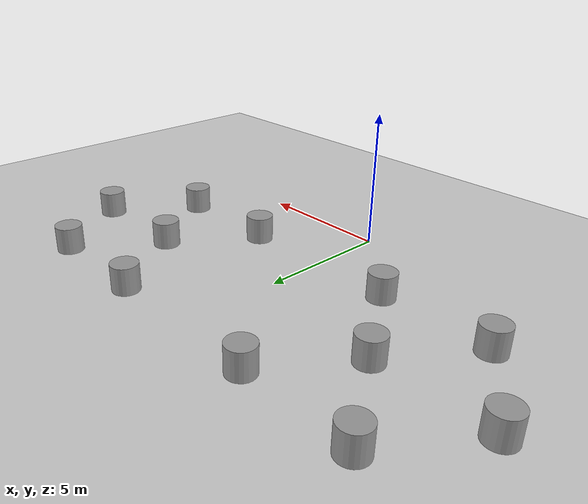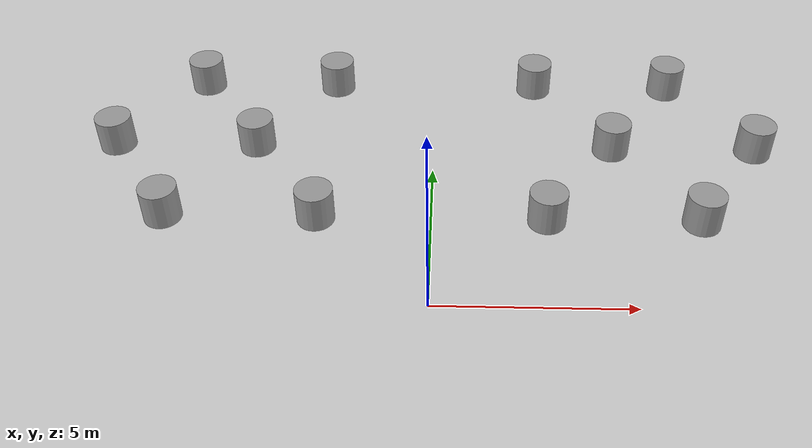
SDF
<sdf version="1.7">
 <world name="default">
  <light name="sun" type="directional">
   <pose>0 0 10 0 -0 0</pose>
   <diffuse>0.8 0.8 0.8 1</diffuse>
   <specular>0.2 0.2 0.2 1</specular>
   <attenuation>
    <range>1000</range>
    <constant>0.9</constant>
    <linear>0.01</linear>
    <quadratic>0.001</quadratic>
   </attenuation>
   <direction>-0.5 0.1 -0.9</direction>
   <spot><inner_angle>0</inner_angle><outer_angle>0</outer_angle><falloff>0</falloff></spot>
  </light>
  <model name="ground_plane">
   <static>1</static>
   <link name="link">
    <collision name="collision">
     <geometry><plane><normal>0 0 1</normal><size>100 100</size></plane></geometry>
     <surface><friction><ode><mu>100</mu><mu2>50</mu2></ode></friction></surface>
    </collision>
    <visual name="visual">
     <cast_shadows>0</cast_shadows>
     <geometry><plane><normal>0 0 1</normal><size>100 100</size></plane></geometry>
     <material>
      <script><uri>file://media/materials/scripts/gazebo.material</uri><name>Gazebo/Grey</name></script>
     </material>
    </visual>
   </link>
  </model>
  <gravity>0 0 -9.8</gravity>
  <magnetic_field>6e-06 2.3e-05 -4.2e-05</magnetic_field>
  <atmosphere type="adiabatic"/>
  <physics type="ode">
   <max_step_size>0.01</max_step_size>
   <real_time_factor>1</real_time_factor>
   <real_time_update_rate>100</real_time_update_rate>
  </physics>
  <scene><ambient>0.4 0.4 0.4 1</ambient><background>0.7 0.7 0.7 1</background><shadows>1</shadows></scene>
  <spherical_coordinates>
   <surface_model>EARTH_WGS84</surface_model>
   <latitude_deg>0</latitude_deg>
   <longitude_deg>0</longitude_deg>
   <elevation>0</elevation>
   <heading_deg>0</heading_deg>
  </spherical_coordinates>
  <model name="unit_cylinder">
   <pose>2.99991 3.00009 0.49912 0 0 -0.135804</pose>
   <link name="link">
    <inertial>
     <mass>1</mass>
     <inertia><ixx>0.145833</ixx><ixy>0</ixy><ixz>0</ixz><iyy>0.145833</iyy><iyz>0</iyz><izz>0.125</izz></inertia>
    </inertial>
    <collision name="collision">
     <geometry><cylinder><radius>0.5</radius><length>1</length></cylinder></geometry>
    </collision>
    <visual name="visual">
     <geometry><cylinder><radius>0.5</radius><length>1</length></cylinder></geometry>
     <material>
      <script><name>Gazebo/Grey</name><uri>file://media/materials/scripts/gazebo.material</uri></script>
     </material>
    </visual>
   </link>
  </model>
  <model name="unit_cylinder_0">
   <pose>5.00007 5.99994 0.499789 0.000427 0.000418 0.010211</pose>
   <link name="link">
    <inertial>
     <mass>1</mass>
     <inertia><ixx>0.145833</ixx><ixy>0</ixy><ixz>0</ixz><iyy>0.145833</iyy><iyz>0</iyz><izz>0.125</izz></inertia>
    </inertial>
    <collision name="collision">
     <geometry><cylinder><radius>0.5</radius><length>1</length></cylinder></geometry>
    </collision>
    <visual name="visual">
     <geometry><cylinder><radius>0.5</radius><length>1</length></cylinder></geometry>
     <material>
      <script><name>Gazebo/Grey</name><uri>file://media/materials/scripts/gazebo.material</uri></script>
     </material>
    </visual>
   </link>
  </model>
  <model name="unit_cylinder_2">
   <pose>8.99986 6.00015 0.499096 4.8e-05 4.8e-05 -3.6e-05</pose>
   <link name="link">
    <inertial>
     <mass>1</mass>
     <inertia><ixx>0.145833</ixx><ixy>0</ixy><ixz>0</ixz><iyy>0.145833</iyy><iyz>0</iyz><izz>0.125</izz></inertia>
    </inertial>
    <collision name="collision">
     <geometry><cylinder><radius>0.5</radius><length>1</length></cylinder></geometry>
    </collision>
    <visual name="visual">
     <geometry><cylinder><radius>0.5</radius><length>1</length></cylinder></geometry>
     <material>
      <script><name>Gazebo/Grey</name><uri>file://media/materials/scripts/gazebo.material</uri></script>
     </material>
    </visual>
   </link>
  </model>
  <model name="unit_cylinder_1">
   <pose>2.99973 9.00027 0.499096 5e-05 4.7e-05 0.030057</pose>
   <link name="link">
    <inertial>
     <mass>1</mass>
     <inertia><ixx>0.145833</ixx><ixy>0</ixy><ixz>0</ixz><iyy>0.145833</iyy><iyz>0</iyz><izz>0.125</izz></inertia>
    </inertial>
    <collision name="collision">
     <geometry><cylinder><radius>0.5</radius><length>1</length></cylinder></geometry>
    </collision>
    <visual name="visual">
     <geometry><cylinder><radius>0.5</radius><length>1</length></cylinder></geometry>
     <material>
      <script><name>Gazebo/Grey</name><uri>file://media/materials/scripts/gazebo.material</uri></script>
     </material>
    </visual>
   </link>
  </model>
  <model name="unit_cylinder_3">
   <pose>6.99993 9.00007 0.499096 4.8e-05 4.8e-05 -2.6e-05</pose>
   <link name="link">
    <inertial>
     <mass>1</mass>
     <inertia><ixx>0.145833</ixx><ixy>0</ixy><ixz>0</ixz><iyy>0.145833</iyy><iyz>0</iyz><izz>0.125</izz></inertia>
    </inertial>
    <collision name="collision">
     <geometry><cylinder><radius>0.5</radius><length>1</length></cylinder></geometry>
    </collision>
    <visual name="visual">
     <geometry><cylinder><radius>0.5</radius><length>1</length></cylinder></geometry>
     <material>
      <script><name>Gazebo/Grey</name><uri>file://media/materials/scripts/gazebo.material</uri></script>
     </material>
    </visual>
   </link>
  </model>
  <model name="unit_cylinder_4">
   <pose>6.99988 3.00012 0.49912 0 0 -2.5e-05</pose>
   <link name="link">
    <inertial>
     <mass>1</mass>
     <inertia><ixx>0.145833</ixx><ixy>0</ixy><ixz>0</ixz><iyy>0.145833</iyy><iyz>0</iyz><izz>0.125</izz></inertia>
    </inertial>
    <collision name="collision">
     <geometry><cylinder><radius>0.5</radius><length>1</length></cylinder></geometry>
    </collision>
    <visual name="visual">
     <geometry><cylinder><radius>0.5</radius><length>1</length></cylinder></geometry>
     <material>
      <script><name>Gazebo/Grey</name><uri>file://media/materials/scripts/gazebo.material</uri></script>
     </material>
    </visual>
   </link>
  </model>
  <model name="unit_cylinder_5">
   <pose>-7.00018 3.00018 0.499824 -0.000249 -0.000249 -1.6e-05</pose>
   <link name="link">
    <inertial>
     <mass>1</mass>
     <inertia><ixx>0.145833</ixx><ixy>0</ixy><ixz>0</ixz><iyy>0.145833</iyy><iyz>0</iyz><izz>0.125</izz></inertia>
    </inertial>
    <collision name="collision">
     <geometry><cylinder><radius>0.5</radius><length>1</length></cylinder></geometry>
    </collision>
    <visual name="visual">
     <geometry><cylinder><radius>0.5</radius><length>1</length></cylinder></geometry>
     <material>
      <script><name>Gazebo/Grey</name><uri>file://media/materials/scripts/gazebo.material</uri></script>
     </material>
    </visual>
   </link>
  </model>
  <model name="unit_cylinder_6">
   <pose>-6.99998 8.99998 0.499096 4.8e-05 4.8e-05 -1.5e-05</pose>
   <link name="link">
    <inertial>
     <mass>1</mass>
     <inertia><ixx>0.145833</ixx><ixy>0</ixy><ixz>0</ixz><iyy>0.145833</iyy><iyz>0</iyz><izz>0.125</izz></inertia>
    </inertial>
    <collision name="collision">
     <geometry><cylinder><radius>0.5</radius><length>1</length></cylinder></geometry>
    </collision>
    <visual name="visual">
     <geometry><cylinder><radius>0.5</radius><length>1</length></cylinder></geometry>
     <material>
      <script><name>Gazebo/Grey</name><uri>file://media/materials/scripts/gazebo.material</uri></script>
     </material>
    </visual>
   </link>
  </model>
  <model name="unit_cylinder_7">
   <pose>-9.00023 6.00023 0.49912 0 0 -1.5e-05</pose>
   <link name="link">
    <inertial>
     <mass>1</mass>
     <inertia><ixx>0.145833</ixx><ixy>0</ixy><ixz>0</ixz><iyy>0.145833</iyy><iyz>0</iyz><izz>0.125</izz></inertia>
    </inertial>
    <collision name="collision">
     <geometry><cylinder><radius>0.5</radius><length>1</length></cylinder></geometry>
    </collision>
    <visual name="visual">
     <geometry><cylinder><radius>0.5</radius><length>1</length></cylinder></geometry>
     <material>
      <script><name>Gazebo/Grey</name><uri>file://media/materials/scripts/gazebo.material</uri></script>
     </material>
    </visual>
   </link>
  </model>
  <model name="unit_cylinder_8">
   <pose>-2.9998 8.9998 0.499789 0.000422 0.000422 -1.3e-05</pose>
   <link name="link">
    <inertial>
     <mass>1</mass>
     <inertia><ixx>0.145833</ixx><ixy>0</ixy><ixz>0</ixz><iyy>0.145833</iyy><iyz>0</iyz><izz>0.125</izz></inertia>
    </inertial>
    <collision name="collision">
     <geometry><cylinder><radius>0.5</radius><length>1</length></cylinder></geometry>
    </collision>
    <visual name="visual">
     <geometry><cylinder><radius>0.5</radius><length>1</length></cylinder></geometry>
     <material>
      <script><name>Gazebo/Grey</name><uri>file://media/materials/scripts/gazebo.material</uri></script>
     </material>
    </visual>
   </link>
  </model>
  <model name="unit_cylinder_9">
   <pose>-5.00036 6.00036 0.499824 -0.000249 -0.000249 -1.2e-05</pose>
   <link name="link">
    <inertial>
     <mass>1</mass>
     <inertia><ixx>0.145833</ixx><ixy>0</ixy><ixz>0</ixz><iyy>0.145833</iyy><iyz>0</iyz><izz>0.125</izz></inertia>
    </inertial>
    <collision name="collision">
     <geometry><cylinder><radius>0.5</radius><length>1</length></cylinder></geometry>
    </collision>
    <visual name="visual">
     <geometry><cylinder><radius>0.5</radius><length>1</length></cylinder></geometry>
     <material>
      <script><name>Gazebo/Grey</name><uri>file://media/materials/scripts/gazebo.material</uri></script>
     </material>
    </visual>
   </link>
  </model>
  <model name="unit_cylinder_10">
   <pose>-3.00006 3.00006 0.49912 0 0 -1e-05</pose>
   <link name="link">
    <inertial>
     <mass>1</mass>
     <inertia><ixx>0.145833</ixx><ixy>0</ixy><ixz>0</ixz><iyy>0.145833</iyy><iyz>0</iyz><izz>0.125</izz></inertia>
    </inertial>
    <collision name="collision">
     <geometry><cylinder><radius>0.5</radius><length>1</length></cylinder></geometry>
    </collision>
    <visual name="visual">
     <geometry><cylinder><radius>0.5</radius><length>1</length></cylinder></geometry>
     <material>
      <script><name>Gazebo/Grey</name><uri>file://media/materials/scripts/gazebo.material</uri></script>
     </material>
    </visual>
   </link>
  </model>
 </world>
</sdf>
